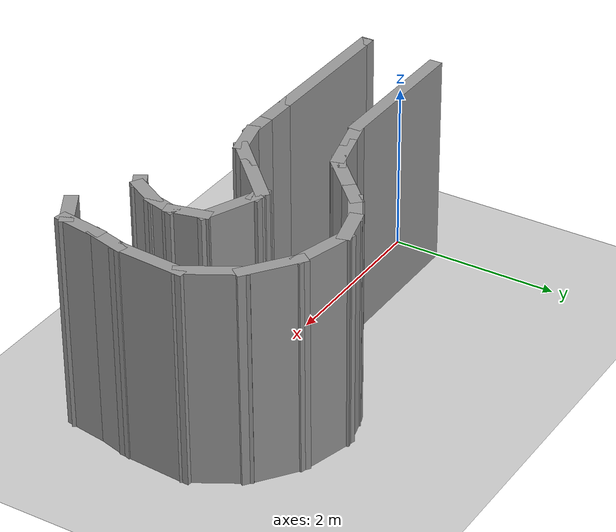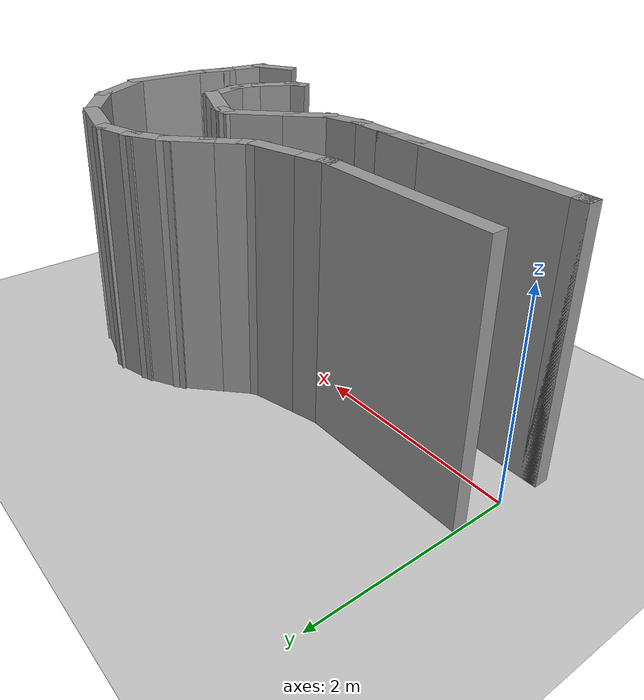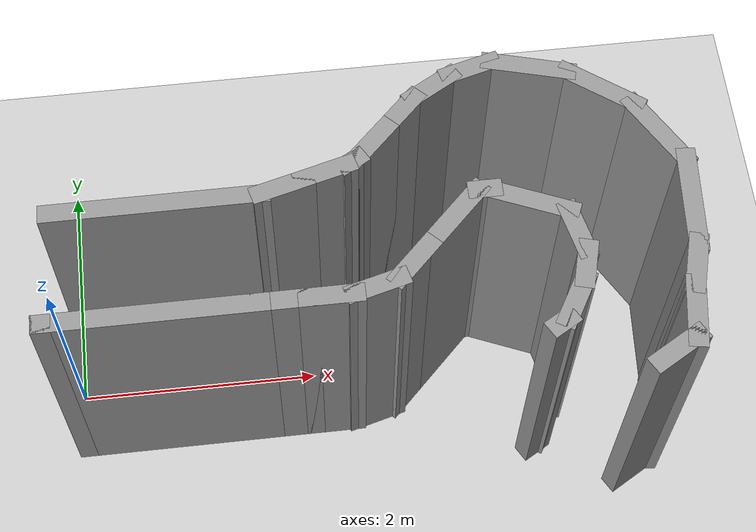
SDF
<sdf version="1.7">
 <world name="default">
  <model name="ground_plane">
   <static>1</static>
   <link name="link">
    <collision name="collision">
     <geometry><plane><normal>0 0 1</normal><size>100 100</size></plane></geometry>
     <surface><friction><ode><mu>100</mu><mu2>50</mu2></ode></friction></surface>
    </collision>
    <visual name="visual">
     <cast_shadows>0</cast_shadows>
     <geometry><plane><normal>0 0 1</normal><size>100 100</size></plane></geometry>
     <material>
      <script><uri>file://media/materials/scripts/gazebo.material</uri><name>Gazebo/Grey</name></script>
     </material>
    </visual>
   </link>
  </model>
  <light name="sun" type="directional">
   <pose>0 0 10 0 -0 0</pose>
   <diffuse>0.8 0.8 0.8 1</diffuse>
   <specular>0.2 0.2 0.2 1</specular>
   <attenuation>
    <range>1000</range>
    <constant>0.9</constant>
    <linear>0.01</linear>
    <quadratic>0.001</quadratic>
   </attenuation>
   <direction>-0.5 0.1 -0.9</direction>
   <spot><inner_angle>0</inner_angle><outer_angle>0</outer_angle><falloff>0</falloff></spot>
  </light>
  <scene><shadows>0</shadows><ambient>0.4 0.4 0.4 1</ambient><background>0.7 0.7 0.7 1</background></scene>
  <physics type="ode">
   <real_time_update_rate>1000</real_time_update_rate>
   <max_step_size>0.001</max_step_size>
   <real_time_factor>1</real_time_factor>
   <ode>
    <solver>
     <type>quick</type>
     <iters>150</iters>
     <precon_iters>0</precon_iters>
     <sor>1.4</sor>
     <use_dynamic_moi_rescaling>1</use_dynamic_moi_rescaling>
    </solver>
    <constraints>
     <cfm>1e-05</cfm>
     <erp>0.2</erp>
     <contact_max_correcting_vel>2000</contact_max_correcting_vel>
     <contact_surface_layer>0.01</contact_surface_layer>
    </constraints>
   </ode>
  </physics>
  <gravity>0 0 -9.8</gravity>
  <magnetic_field>6e-06 2.3e-05 -4.2e-05</magnetic_field>
  <atmosphere type="adiabatic"/>
  <audio><device>default</device></audio>
  <spherical_coordinates>
   <surface_model>EARTH_WGS84</surface_model>
   <latitude_deg>0</latitude_deg>
   <longitude_deg>0</longitude_deg>
   <elevation>0</elevation>
   <heading_deg>0</heading_deg>
  </spherical_coordinates>
  <model name="forburger">
   <pose>2.23877 0.096402 0 0 -0 0</pose>
   <link name="Wall_1">
    <collision name="Wall_1_Collision">
     <geometry><box><size>0.15 0.15 2.5</size></box></geometry>
     <pose>0 0 1.25 0 -0 0</pose>
    </collision>
    <visual name="Wall_1_Visual">
     <pose>0 0 1.25 0 -0 0</pose>
     <geometry><box><size>0.15 0.15 2.5</size></box></geometry>
     <material>
      <script><uri>file://media/materials/scripts/gazebo.material</uri><name>Gazebo/Grey</name></script>
      <ambient>1 1 1 1</ambient>
     </material>
     <meta><layer>0</layer></meta>
    </visual>
    <pose>-2.22 -0.554389 0 0 -0 0</pose>
   </link>
   <link name="Wall_11">
    <collision name="Wall_11_Collision">
     <geometry><box><size>0.5 0.15 2.5</size></box></geometry>
     <pose>0 0 1.25 0 -0 0</pose>
    </collision>
    <visual name="Wall_11_Visual">
     <pose>0 0 1.25 0 -0 0</pose>
     <geometry><box><size>0.5 0.15 2.5</size></box></geometry>
     <material>
      <script><uri>file://media/materials/scripts/gazebo.material</uri><name>Gazebo/Grey</name></script>
      <ambient>1 1 1 1</ambient>
     </material>
     <meta><layer>0</layer></meta>
    </visual>
    <pose>-0.038476 0.489837 0 0 -0 0.261799</pose>
   </link>
   <link name="Wall_12">
    <collision name="Wall_12_Collision">
     <geometry><box><size>0.25 0.15 2.5</size></box></geometry>
     <pose>0 0 1.25 0 -0 0</pose>
    </collision>
    <visual name="Wall_12_Visual">
     <pose>0 0 1.25 0 -0 0</pose>
     <geometry><box><size>0.25 0.15 2.5</size></box></geometry>
     <material>
      <script><uri>file://media/materials/scripts/gazebo.material</uri><name>Gazebo/Grey</name></script>
      <ambient>1 1 1 1</ambient>
     </material>
     <meta><layer>0</layer></meta>
    </visual>
    <pose>0.173862 0.56013 0 0 -0 0.523599</pose>
   </link>
   <link name="Wall_13">
    <collision name="Wall_13_Collision">
     <geometry><box><size>0.5 0.15 2.5</size></box></geometry>
     <pose>0 0 1.25 0 -0 0</pose>
    </collision>
    <visual name="Wall_13_Visual">
     <pose>0 0 1.25 0 -0 0</pose>
     <geometry><box><size>0.5 0.15 2.5</size></box></geometry>
     <material>
      <script><uri>file://media/materials/scripts/gazebo.material</uri><name>Gazebo/Grey</name></script>
      <ambient>1 1 1 1</ambient>
     </material>
     <meta><layer>0</layer></meta>
    </visual>
    <pose>0.340907 0.708874 0 0 -0 0.785398</pose>
   </link>
   <link name="Wall_14">
    <collision name="Wall_14_Collision">
     <geometry><box><size>0.5 0.15 2.5</size></box></geometry>
     <pose>0 0 1.25 0 -0 0</pose>
    </collision>
    <visual name="Wall_14_Visual">
     <pose>0 0 1.25 0 -0 0</pose>
     <geometry><box><size>0.5 0.15 2.5</size></box></geometry>
     <material>
      <script><uri>file://media/materials/scripts/gazebo.material</uri><name>Gazebo/Grey</name></script>
      <ambient>1 1 1 1</ambient>
     </material>
     <meta><layer>0</layer></meta>
    </visual>
    <pose>0.588394 0.956361 0 0 -0 0.785398</pose>
   </link>
   <link name="Wall_15">
    <collision name="Wall_15_Collision">
     <geometry><box><size>0.5 0.15 2.5</size></box></geometry>
     <pose>0 0 1.25 0 -0 0</pose>
    </collision>
    <visual name="Wall_15_Visual">
     <pose>0 0 1.25 0 -0 0</pose>
     <geometry><box><size>0.5 0.15 2.5</size></box></geometry>
     <material>
      <script><uri>file://media/materials/scripts/gazebo.material</uri><name>Gazebo/Grey</name></script>
      <ambient>1 1 1 1</ambient>
     </material>
     <meta><layer>0</layer></meta>
    </visual>
    <pose>0.863692 1.16761 0 0 -0 0.523599</pose>
   </link>
   <link name="Wall_16">
    <collision name="Wall_16_Collision">
     <geometry><box><size>0.5 0.15 2.5</size></box></geometry>
     <pose>0 0 1.25 0 -0 0</pose>
    </collision>
    <visual name="Wall_16_Visual">
     <pose>0 0 1.25 0 -0 0</pose>
     <geometry><box><size>0.5 0.15 2.5</size></box></geometry>
     <material>
      <script><uri>file://media/materials/scripts/gazebo.material</uri><name>Gazebo/Grey</name></script>
      <ambient>1 1 1 1</ambient>
     </material>
     <meta><layer>0</layer></meta>
    </visual>
    <pose>1.18428 1.3004 0 0 -0 0.261799</pose>
   </link>
   <link name="Wall_17">
    <collision name="Wall_17_Collision">
     <geometry><box><size>0.75 0.15 2.5</size></box></geometry>
     <pose>0 0 1.25 0 -0 0</pose>
    </collision>
    <visual name="Wall_17_Visual">
     <pose>0 0 1.25 0 -0 0</pose>
     <geometry><box><size>0.75 0.15 2.5</size></box></geometry>
     <material>
      <script><uri>file://media/materials/scripts/gazebo.material</uri><name>Gazebo/Grey</name></script>
      <ambient>1 1 1 1</ambient>
     </material>
     <meta><layer>0</layer></meta>
    </visual>
    <pose>1.6431 1.26805 0 0 -0 -0.261799</pose>
   </link>
   <link name="Wall_18">
    <collision name="Wall_18_Collision">
     <geometry><box><size>0.743896 0.15 2.5</size></box></geometry>
     <pose>0 0 1.25 0 -0 0</pose>
    </collision>
    <visual name="Wall_18_Visual">
     <pose>0 0 1.25 0 -0 0</pose>
     <geometry><box><size>0.743896 0.15 2.5</size></box></geometry>
     <material>
      <script><uri>file://media/materials/scripts/gazebo.material</uri><name>Gazebo/Grey</name></script>
      <ambient>1 1 1 1</ambient>
     </material>
     <meta><layer>0</layer></meta>
    </visual>
    <pose>2.17183 1.0141 0 0 -0 -0.63565</pose>
   </link>
   <link name="Wall_19">
    <collision name="Wall_19_Collision">
     <geometry><box><size>0.75 0.15 2.5</size></box></geometry>
     <pose>0 0 1.25 0 -0 0</pose>
    </collision>
    <visual name="Wall_19_Visual">
     <pose>0 0 1.25 0 -0 0</pose>
     <geometry><box><size>0.75 0.15 2.5</size></box></geometry>
     <material>
      <script><uri>file://media/materials/scripts/gazebo.material</uri><name>Gazebo/Grey</name></script>
      <ambient>1 1 1 1</ambient>
     </material>
     <meta><layer>0</layer></meta>
    </visual>
    <pose>2.54755 0.577996 0 0 -0 -1.0472</pose>
   </link>
   <link name="Wall_2">
    <collision name="Wall_2_Collision">
     <geometry><box><size>1.75 0.15 2.5</size></box></geometry>
     <pose>0 0 1.25 0 -0 0</pose>
    </collision>
    <visual name="Wall_2_Visual">
     <pose>0 0 1.25 0 -0 0</pose>
     <geometry><box><size>1.75 0.15 2.5</size></box></geometry>
     <material>
      <script><uri>file://media/materials/scripts/gazebo.material</uri><name>Gazebo/Grey</name></script>
      <ambient>1 1 1 1</ambient>
     </material>
     <meta><layer>0</layer></meta>
    </visual>
    <pose>-1.42 -0.554389 0 0 -0 0</pose>
   </link>
   <link name="Wall_20">
    <collision name="Wall_20_Collision">
     <geometry><box><size>0.88543 0.15 2.5</size></box></geometry>
     <pose>0 0 1.25 0 -0 0</pose>
    </collision>
    <visual name="Wall_20_Visual">
     <pose>0 0 1.25 0 -0 0</pose>
     <geometry><box><size>0.88543 0.15 2.5</size></box></geometry>
     <material>
      <script><uri>file://media/materials/scripts/gazebo.material</uri><name>Gazebo/Grey</name></script>
      <ambient>1 1 1 1</ambient>
     </material>
     <meta><layer>0</layer></meta>
    </visual>
    <pose>2.68433 -0.048574 0 0 -0 -1.64279</pose>
   </link>
   <link name="Wall_21">
    <collision name="Wall_21_Collision">
     <geometry><box><size>0.5 0.15 2.5</size></box></geometry>
     <pose>0 0 1.25 0 -0 0</pose>
    </collision>
    <visual name="Wall_21_Visual">
     <pose>0 0 1.25 0 -0 0</pose>
     <geometry><box><size>0.5 0.15 2.5</size></box></geometry>
     <material>
      <script><uri>file://media/materials/scripts/gazebo.material</uri><name>Gazebo/Grey</name></script>
      <ambient>1 1 1 1</ambient>
     </material>
     <meta><layer>0</layer></meta>
    </visual>
    <pose>2.61258 -0.584374 0 0 -0 -1.8326</pose>
   </link>
   <link name="Wall_22">
    <collision name="Wall_22_Collision">
     <geometry><box><size>0.584859 0.15 2.5</size></box></geometry>
     <pose>0 0 1.25 0 -0 0</pose>
    </collision>
    <visual name="Wall_22_Visual">
     <pose>0 0 1.25 0 -0 0</pose>
     <geometry><box><size>0.584859 0.15 2.5</size></box></geometry>
     <material>
      <script><uri>file://media/materials/scripts/gazebo.material</uri><name>Gazebo/Grey</name></script>
      <ambient>1 1 1 1</ambient>
     </material>
     <meta><layer>0</layer></meta>
    </visual>
    <pose>2.53343 -0.968188 0 0 -0 -1.72715</pose>
   </link>
   <link name="Wall_23">
    <collision name="Wall_23_Collision">
     <geometry><box><size>0.5 0.15 2.5</size></box></geometry>
     <pose>0 0 1.25 0 -0 0</pose>
    </collision>
    <visual name="Wall_23_Visual">
     <pose>0 0 1.25 0 -0 0</pose>
     <geometry><box><size>0.5 0.15 2.5</size></box></geometry>
     <material>
      <script><uri>file://media/materials/scripts/gazebo.material</uri><name>Gazebo/Grey</name></script>
      <ambient>1 1 1 1</ambient>
     </material>
     <meta><layer>0</layer></meta>
    </visual>
    <pose>2.34802 -1.2476 0 0 -0 -2.61799</pose>
   </link>
   <link name="Wall_25">
    <collision name="Wall_25_Collision">
     <geometry><box><size>0.5 0.15 2.5</size></box></geometry>
     <pose>0 0 1.25 0 -0 0</pose>
    </collision>
    <visual name="Wall_25_Visual">
     <pose>0 0 1.25 0 -0 0</pose>
     <geometry><box><size>0.5 0.15 2.5</size></box></geometry>
     <material>
      <script><uri>file://media/materials/scripts/gazebo.material</uri><name>Gazebo/Grey</name></script>
      <ambient>1 1 1 1</ambient>
     </material>
     <meta><layer>0</layer></meta>
    </visual>
    <pose>-0.445003 -0.554389 0 0 -0 0</pose>
   </link>
   <link name="Wall_26">
    <collision name="Wall_26_Collision">
     <geometry><box><size>0.5 0.15 2.5</size></box></geometry>
     <pose>0 0 1.25 0 -0 0</pose>
    </collision>
    <visual name="Wall_26_Visual">
     <pose>0 0 1.25 0 -0 0</pose>
     <geometry><box><size>0.5 0.15 2.5</size></box></geometry>
     <material>
      <script><uri>file://media/materials/scripts/gazebo.material</uri><name>Gazebo/Grey</name></script>
      <ambient>1 1 1 1</ambient>
     </material>
     <meta><layer>0</layer></meta>
    </visual>
    <pose>-0.095003 -0.554389 0 0 -0 0</pose>
   </link>
   <link name="Wall_27">
    <collision name="Wall_27_Collision">
     <geometry><box><size>0.5 0.15 2.5</size></box></geometry>
     <pose>0 0 1.25 0 -0 0</pose>
    </collision>
    <visual name="Wall_27_Visual">
     <pose>0 0 1.25 0 -0 0</pose>
     <geometry><box><size>0.5 0.15 2.5</size></box></geometry>
     <material>
      <script><uri>file://media/materials/scripts/gazebo.material</uri><name>Gazebo/Grey</name></script>
      <ambient>1 1 1 1</ambient>
     </material>
     <meta><layer>0</layer></meta>
    </visual>
    <pose>0.249034 -0.509095 0 0 -0 0.261799</pose>
   </link>
   <link name="Wall_28">
    <collision name="Wall_28_Collision">
     <geometry><box><size>0.5 0.15 2.5</size></box></geometry>
     <pose>0 0 1.25 0 -0 0</pose>
    </collision>
    <visual name="Wall_28_Visual">
     <pose>0 0 1.25 0 -0 0</pose>
     <geometry><box><size>0.5 0.15 2.5</size></box></geometry>
     <material>
      <script><uri>file://media/materials/scripts/gazebo.material</uri><name>Gazebo/Grey</name></script>
      <ambient>1 1 1 1</ambient>
     </material>
     <meta><layer>0</layer></meta>
    </visual>
    <pose>0.541814 -0.340058 0 0 -0 0.785398</pose>
   </link>
   <link name="Wall_29">
    <collision name="Wall_29_Collision">
     <geometry><box><size>0.75 0.15 2.5</size></box></geometry>
     <pose>0 0 1.25 0 -0 0</pose>
    </collision>
    <visual name="Wall_29_Visual">
     <pose>0 0 1.25 0 -0 0</pose>
     <geometry><box><size>0.75 0.15 2.5</size></box></geometry>
     <material>
      <script><uri>file://media/materials/scripts/gazebo.material</uri><name>Gazebo/Grey</name></script>
      <ambient>1 1 1 1</ambient>
     </material>
     <meta><layer>0</layer></meta>
    </visual>
    <pose>0.87769 -0.004183 0 0 -0 0.785398</pose>
   </link>
   <link name="Wall_30">
    <collision name="Wall_30_Collision">
     <geometry><box><size>0.263995 0.15 2.5</size></box></geometry>
     <pose>0 0 1.25 0 -0 0</pose>
    </collision>
    <visual name="Wall_30_Visual">
     <pose>0 0 1.25 0 -0 0</pose>
     <geometry><box><size>0.263995 0.15 2.5</size></box></geometry>
     <material>
      <script><uri>file://media/materials/scripts/gazebo.material</uri><name>Gazebo/Grey</name></script>
      <ambient>1 1 1 1</ambient>
     </material>
     <meta><layer>0</layer></meta>
    </visual>
    <pose>1.14644 0.207949 0 0 -0 0</pose>
   </link>
   <link name="Wall_31">
    <collision name="Wall_31_Collision">
     <geometry><box><size>0.750818 0.15 2.5</size></box></geometry>
     <pose>0 0 1.25 0 -0 0</pose>
    </collision>
    <visual name="Wall_31_Visual">
     <pose>0 0 1.25 0 -0 0</pose>
     <geometry><box><size>0.750818 0.15 2.5</size></box></geometry>
     <material>
      <script><uri>file://media/materials/scripts/gazebo.material</uri><name>Gazebo/Grey</name></script>
      <ambient>1 1 1 1</ambient>
     </material>
     <meta><layer>0</layer></meta>
    </visual>
    <pose>1.4796 0.077404 0 0 -0 -0.401214</pose>
   </link>
   <link name="Wall_32">
    <collision name="Wall_32_Collision">
     <geometry><box><size>0.496812 0.15 2.5</size></box></geometry>
     <pose>0 0 1.25 0 -0 0</pose>
    </collision>
    <visual name="Wall_32_Visual">
     <pose>0 0 1.25 0 -0 0</pose>
     <geometry><box><size>0.496812 0.15 2.5</size></box></geometry>
     <material>
      <script><uri>file://media/materials/scripts/gazebo.material</uri><name>Gazebo/Grey</name></script>
      <ambient>1 1 1 1</ambient>
     </material>
     <meta><layer>0</layer></meta>
    </visual>
    <pose>1.78161 -0.208954 0 0 -0 -1.34584</pose>
   </link>
   <link name="Wall_33">
    <collision name="Wall_33_Collision">
     <geometry><box><size>0.403739 0.15 2.5</size></box></geometry>
     <pose>0 0 1.25 0 -0 0</pose>
    </collision>
    <visual name="Wall_33_Visual">
     <pose>0 0 1.25 0 -0 0</pose>
     <geometry><box><size>0.403739 0.15 2.5</size></box></geometry>
     <material>
      <script><uri>file://media/materials/scripts/gazebo.material</uri><name>Gazebo/Grey</name></script>
      <ambient>1 1 1 1</ambient>
     </material>
     <meta><layer>0</layer></meta>
    </visual>
    <pose>1.80145 -0.500741 0 0 -0 -1.82634</pose>
   </link>
   <link name="Wall_34">
    <collision name="Wall_34_Collision">
     <geometry><box><size>0.5 0.15 2.5</size></box></geometry>
     <pose>0 0 1.25 0 -0 0</pose>
    </collision>
    <visual name="Wall_34_Visual">
     <pose>0 0 1.25 0 -0 0</pose>
     <geometry><box><size>0.5 0.15 2.5</size></box></geometry>
     <material>
      <script><uri>file://media/materials/scripts/gazebo.material</uri><name>Gazebo/Grey</name></script>
      <ambient>1 1 1 1</ambient>
     </material>
     <meta><layer>0</layer></meta>
    </visual>
    <pose>1.68188 -0.775045 0 0 -0 -2.0944</pose>
   </link>
   <link name="Wall_35">
    <collision name="Wall_35_Collision">
     <geometry><box><size>0.25 0.15 2.5</size></box></geometry>
     <pose>0 0 1.25 0 -0 0</pose>
    </collision>
    <visual name="Wall_35_Visual">
     <pose>0 0 1.25 0 -0 0</pose>
     <geometry><box><size>0.25 0.15 2.5</size></box></geometry>
     <material>
      <script><uri>file://media/materials/scripts/gazebo.material</uri><name>Gazebo/Grey</name></script>
      <ambient>1 1 1 1</ambient>
     </material>
     <meta><layer>0</layer></meta>
    </visual>
    <pose>1.55108 -0.951599 0 0 -0 -2.61799</pose>
   </link>
   <link name="Wall_5">
    <collision name="Wall_5_Collision">
     <geometry><box><size>1.75 0.15 2.5</size></box></geometry>
     <pose>0 0 1.25 0 -0 0</pose>
    </collision>
    <visual name="Wall_5_Visual">
     <pose>0 0 1.25 0 -0 0</pose>
     <geometry><box><size>1.75 0.15 2.5</size></box></geometry>
     <material>
      <script><uri>file://media/materials/scripts/gazebo.material</uri><name>Gazebo/Grey</name></script>
      <ambient>1 1 1 1</ambient>
     </material>
     <meta><layer>0</layer></meta>
    </visual>
    <pose>-1.34559 0.353957 0 0 -0 0</pose>
   </link>
   <link name="Wall_6">
    <collision name="Wall_6_Collision">
     <geometry><box><size>0.5 0.15 2.5</size></box></geometry>
     <pose>0 0 1.25 0 -0 0</pose>
    </collision>
    <visual name="Wall_6_Visual">
     <pose>0 0 1.25 0 -0 0</pose>
     <geometry><box><size>0.5 0.15 2.5</size></box></geometry>
     <material>
      <script><uri>file://media/materials/scripts/gazebo.material</uri><name>Gazebo/Grey</name></script>
      <ambient>1 1 1 1</ambient>
     </material>
     <meta><layer>0</layer></meta>
    </visual>
    <pose>-0.37655 0.39925 0 0 -0 0.261799</pose>
   </link>
   <static>1</static>
  </model>
 </world>
</sdf>
